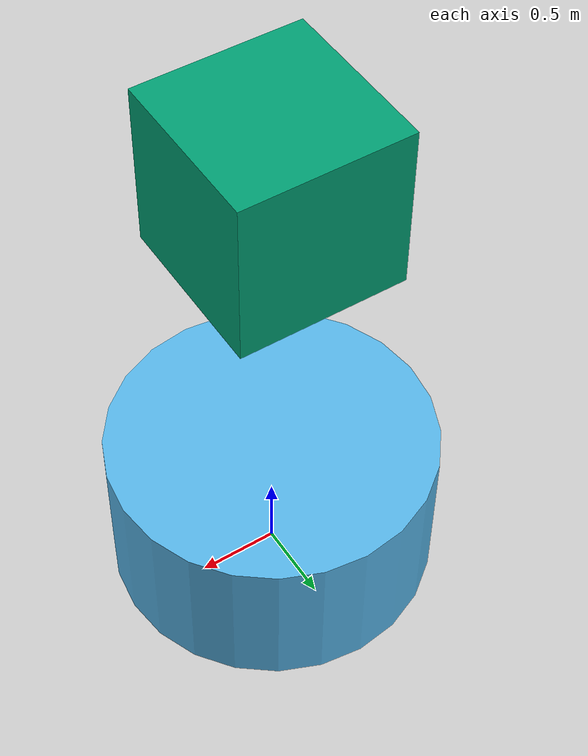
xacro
<?xml version="1.0"?>
<robot name="test_bot" xmlns:xacro="http://ros.org/wiki/xacro">

  <!-- Base Footprint -->
  <link name="base_footprint"/>
  <joint name="base_joint" type="fixed">
    <parent link="base_footprint"/>
    <child link="base_link"/>
    <origin xyz="0.0 0.0 0.5" rpy="0 0 0"/>
  </joint>

  <!-- Base_Link -->
  <link name="base_link">
    <visual>
      <origin xyz="0 0 0"  rpy="0 0 0"/>
      <geometry>
        <cylinder radius="1" length="1"/>
      </geometry>
    </visual>

    <collision>
      <origin xyz="0.0 0.0 0.0" rpy="0 0 0"/>
      <geometry>
        <cylinder radius="1" length="1"/>
      </geometry>
    </collision>

    <inertial>
      <origin xyz="3.0876154e-04 0.0000000e+00 -1.2176461e-04" />
      <mass value="1" />
      <inertia ixx="1.2505234e-02" ixy="0.0" ixz="-1.7855208e-07"
               iyy="2.1898364e-02" iyz="0.0"
               izz="1.9267361e-02" />
    </inertial>
  </link>

  <link name="child_link">
    <visual>
      <origin xyz="0 0 0"  rpy="0 0 0"/>
      <geometry>
        <box size="1 1 1"/>
      </geometry>
    </visual>

    <collision>
      <origin xyz="0.0 0.0 0.0" rpy="0 0 0"/>
      <geometry>
        <box size="1 1 1"/>
      </geometry>
    </collision>

    <inertial>
      <origin xyz="3.0876154e-04 0.0000000e+00 -1.2176461e-04" />
      <mass value="7.9119962e-02" />
      <inertia ixx="1.2505234e-05" ixy="0.0" ixz="-1.7855208e-07"
               iyy="2.1898364e-05" iyz="0.0"
               izz="1.9267361e-05" />
    </inertial>
  </link>

  <joint name="base_link_plate_joint" type="revolute">
    <parent link="base_link"/>
    <child link="child_link"/>
    <origin xyz="0.0 0.0 2.5" rpy="0 0 0"/>
    <axis xyz="0 0 1"/>
    <limit velocity="10" effort="100" lower="-1000" upper="1000"/>
  </joint>

  <ros2_control name="IgnitionSystem" type="system">
    <hardware>
      <plugin>ign_ros2_control/IgnitionSystem</plugin>
    </hardware>
    <joint name="base_link_plate_joint">
      <command_interface name="position">
        <param name="min">-1000</param>
        <param name="max">1000</param>
      </command_interface>
      <state_interface name="position">
        <param name="initial_value">0.0</param>
      </state_interface>
      <state_interface name="velocity"/>
      <state_interface name="effort"/>
    </joint>
  </ros2_control>

  <gazebo>
    <plugin filename="ign_ros2_control-system" name="ign_ros2_control::IgnitionROS2ControlPlugin">
      <robot_param>robot_description</robot_param>
      <robot_param_node>robot_state_publisher</robot_param_node>
      <parameters>$(find test_package)/config/controllers.yaml</parameters>
      <controller_manager_name>controller_manager</controller_manager_name>
    </plugin>
  </gazebo>

</robot>
